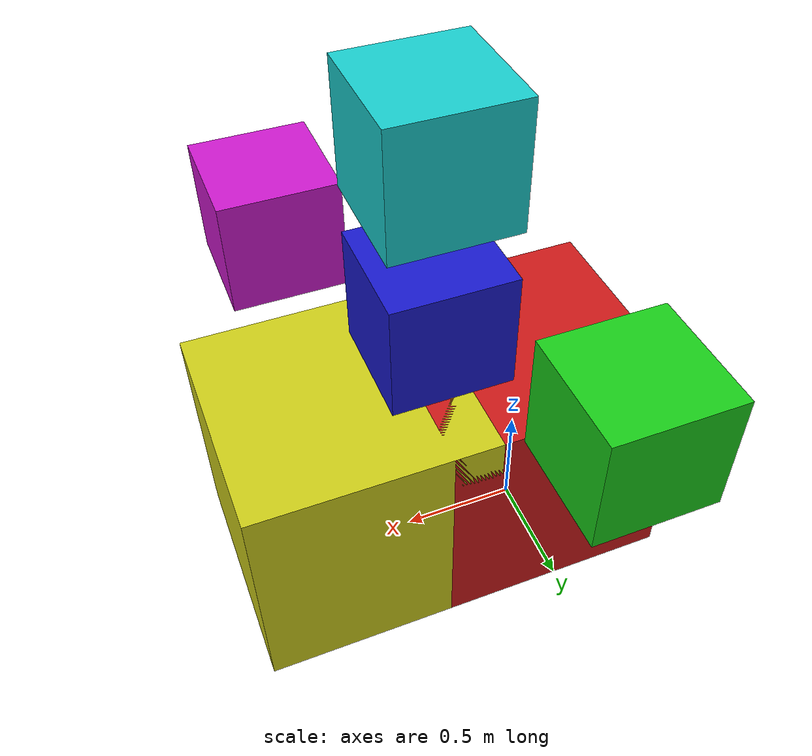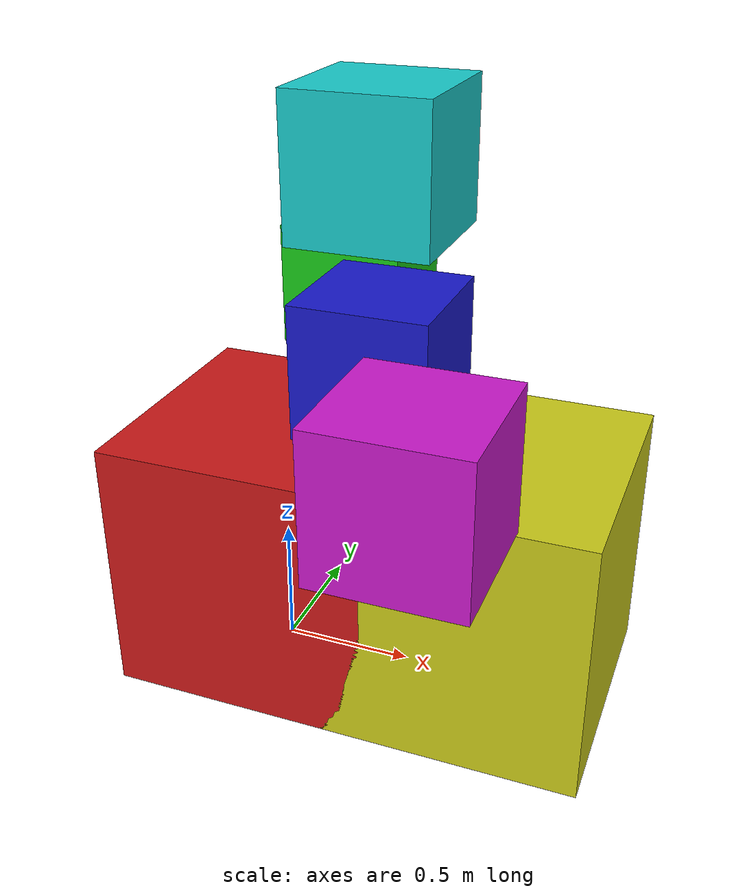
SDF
<?xml version="1.0" ?>
<sdf version="1.9">
  <world name="detachable_joint_contact">
    <gravity>0 0 0</gravity>
    <light type="directional" name="sun">
      <cast_shadows>true</cast_shadows>
      <pose>0 0 10 0 0 0</pose>
      <diffuse>0.8 0.8 0.8 1</diffuse>
      <specular>0.2 0.2 0.2 1</specular>
      <attenuation>
        <range>1000</range>
        <constant>0.9</constant>
        <linear>0.01</linear>
        <quadratic>0.001</quadratic>
      </attenuation>
      <direction>-0.5 0.1 -0.9</direction>
    </light>
    <model name="M1">
      <self_collide>true</self_collide>
      <pose>0 0 0.5 0 0 0</pose>
      <link name="link1_base">
        <collision name="c1_base">
          <geometry>
            <box><size>1.0 1.0 1.0</size></box>
          </geometry>
        </collision>
        <visual name="v1_base">
          <geometry>
            <box><size>1.0 1.0 1.0</size></box>
          </geometry>
          <material>
            <ambient>0.8 0.1 0.1 1</ambient>
            <diffuse>0.8 0.1 0.1 1</diffuse>
          </material>
        </visual>
      </link>
      <link name="link1_fixed">
        <pose>0 0.8 0.8 0 0 0</pose>
        <collision name="c1_fixed">
          <geometry>
            <box><size>0.5 0.5 0.5</size></box>
          </geometry>
        </collision>
        <visual name="v1_fixed">
          <geometry>
            <box><size>0.5 0.5 0.5</size></box>
          </geometry>
          <material>
            <ambient>0.1 0.8 0.1 1</ambient>
            <diffuse>0.1 0.8 0.1 1</diffuse>
          </material>
        </visual>
      </link>
      <joint name="j1_fixed" type="fixed">
        <parent>link1_base</parent>
        <child>link1_fixed</child>
      </joint>
      <link name="link1_moving">
        <pose>0.4 0 0.8 0 0 0</pose>
        <collision name="c1_moving">
          <geometry>
            <box><size>0.5 0.5 0.5</size></box>
          </geometry>
        </collision>
        <visual name="v1_moving">
          <geometry>
            <box><size>0.5 0.5 0.5</size></box>
          </geometry>
          <material>
            <ambient>0.1 0.1 0.8 1</ambient>
            <diffuse>0.1 0.1 0.8 1</diffuse>
          </material>
        </visual>
      </link>
      <joint name="j1_rev" type="revolute">
        <parent>link1_fixed</parent>
        <child>link1_moving</child>
        <axis>
          <xyz>0 1 0</xyz>
          <limit>
            <lower>-10</lower>
            <upper>10</upper>
          </limit>
        </axis>
      </joint>
      <plugin filename="gz-sim-detachable-joint-system"
              name="gz::sim::systems::DetachableJoint">
        <parent_link>link1_base</parent_link>
        <child_model>M2</child_model>
        <child_link>link2_base</child_link>
        <detach_topic>/M1/detach</detach_topic>
        <attach_topic>/M1/attach</attach_topic>
      </plugin>
      <plugin filename="gz-sim-joint-position-controller-system"
              name="gz::sim::systems::JointPositionController">
        <joint_name>j1_rev</joint_name>
        <p_gain>100</p_gain>
        <i_gain>0.1</i_gain>
        <d_gain>10</d_gain>
      </plugin>
    </model>
    <model name="M2">
      <self_collide>true</self_collide>
      <pose>0.8 0 0.5 0 0 0</pose>
      <link name="link2_base">
        <collision name="c2_base">
          <geometry>
            <box><size>1.0 1.0 1.0</size></box>
          </geometry>
        </collision>
        <visual name="v2_base">
          <geometry>
            <box><size>1.0 1.0 1.0</size></box>
          </geometry>
          <material>
            <ambient>0.8 0.8 0.1 1</ambient>
            <diffuse>0.8 0.8 0.1 1</diffuse>
          </material>
        </visual>
      </link>
      <link name="link2_fixed">
        <pose>0 -0.8 0.8 0 0 0</pose>
        <collision name="c2_fixed">
          <geometry>
            <box><size>0.5 0.5 0.5</size></box>
          </geometry>
        </collision>
        <visual name="v2_fixed">
          <geometry>
            <box><size>0.5 0.5 0.5</size></box>
          </geometry>
          <material>
            <ambient>0.8 0.1 0.8 1</ambient>
            <diffuse>0.8 0.1 0.8 1</diffuse>
          </material>
        </visual>
      </link>
      <joint name="j2_fixed" type="fixed">
        <parent>link2_base</parent>
        <child>link2_fixed</child>
      </joint>
      <link name="link2_moving">
        <pose>-0.4 0 1.5 0 0 0</pose>
        <collision name="c2_moving">
          <geometry>
            <box><size>0.5 0.5 0.5</size></box>
          </geometry>
        </collision>
        <visual name="v2_moving">
          <geometry>
            <box><size>0.5 0.5 0.5</size></box>
          </geometry>
          <material>
            <ambient>0.1 0.8 0.8 1</ambient>
            <diffuse>0.1 0.8 0.8 1</diffuse>
          </material>
        </visual>
      </link>
      <joint name="j2_prism" type="prismatic">
        <parent>link2_fixed</parent>
        <child>link2_moving</child>
        <axis>
          <xyz>0 0 1</xyz>
          <limit>
            <lower>-10</lower>
            <upper>10</upper>
          </limit>
        </axis>
      </joint>
      <plugin filename="gz-sim-joint-position-controller-system"
              name="gz::sim::systems::JointPositionController">
        <joint_name>j2_prism</joint_name>
        <p_gain>100</p_gain>
        <i_gain>0.1</i_gain>
        <d_gain>10</d_gain>
      </plugin>
    </model>
  </world>
</sdf>
